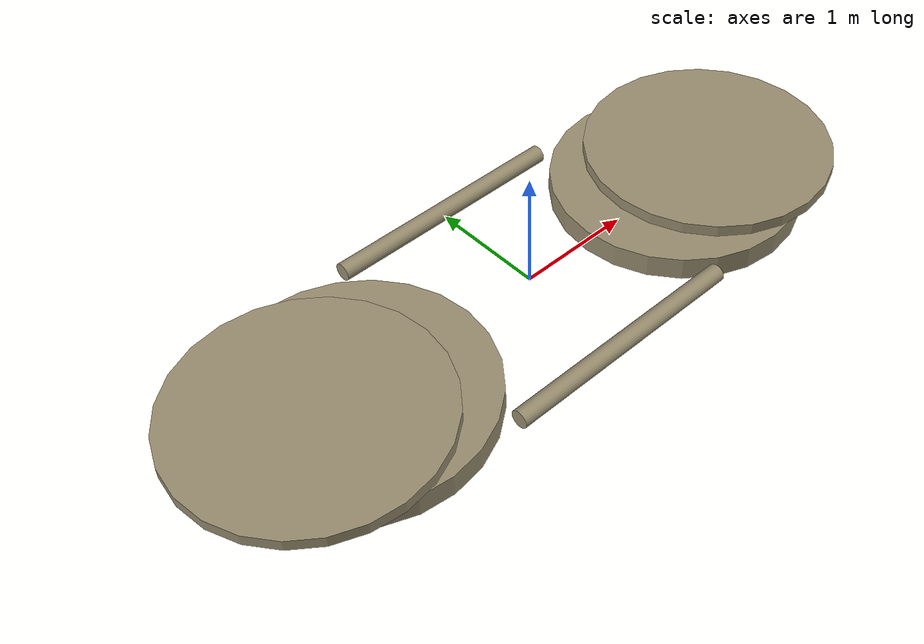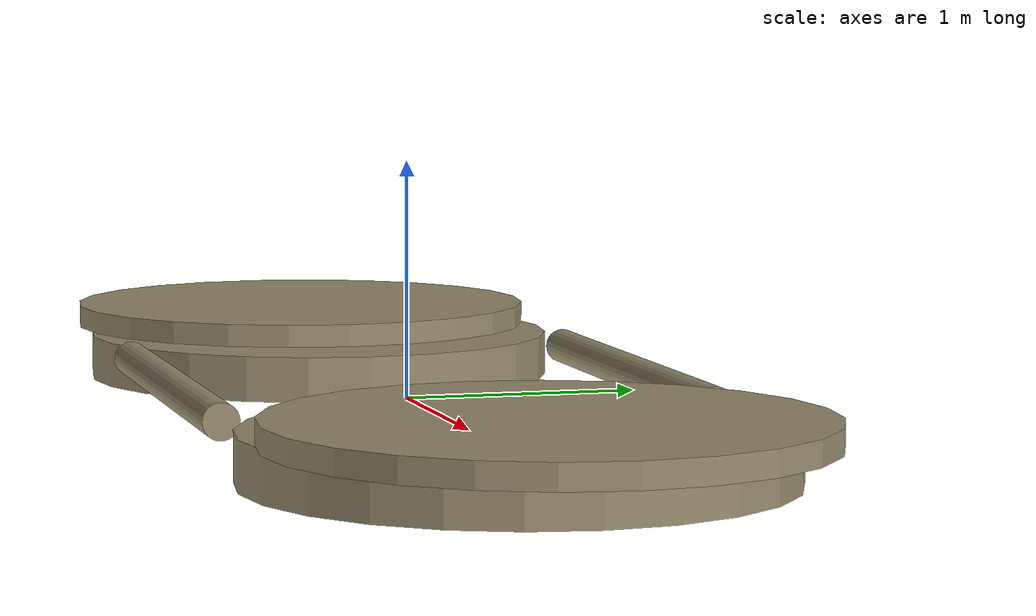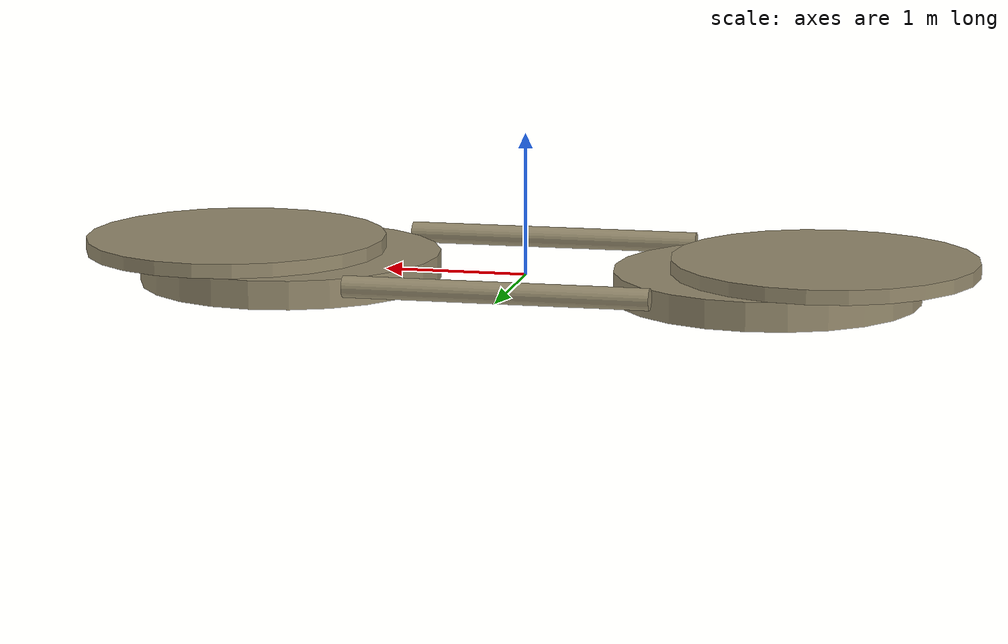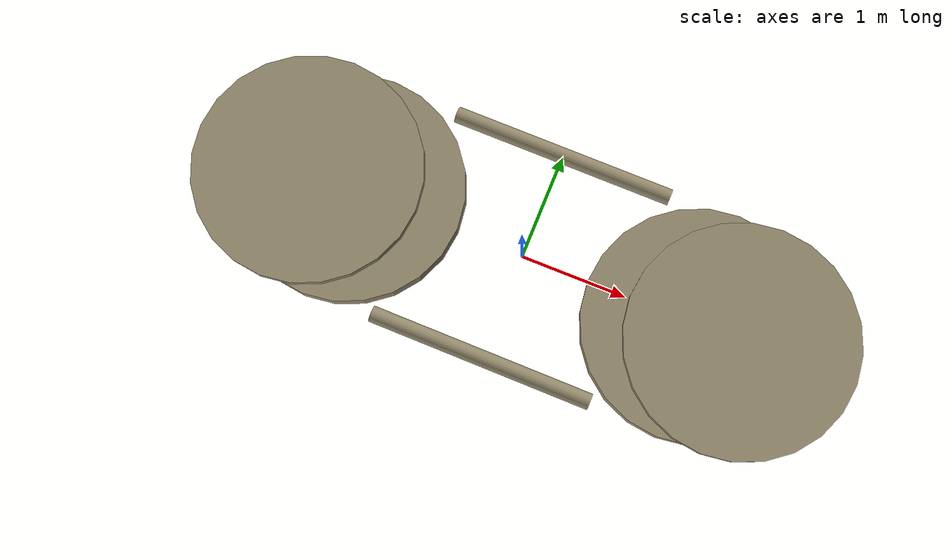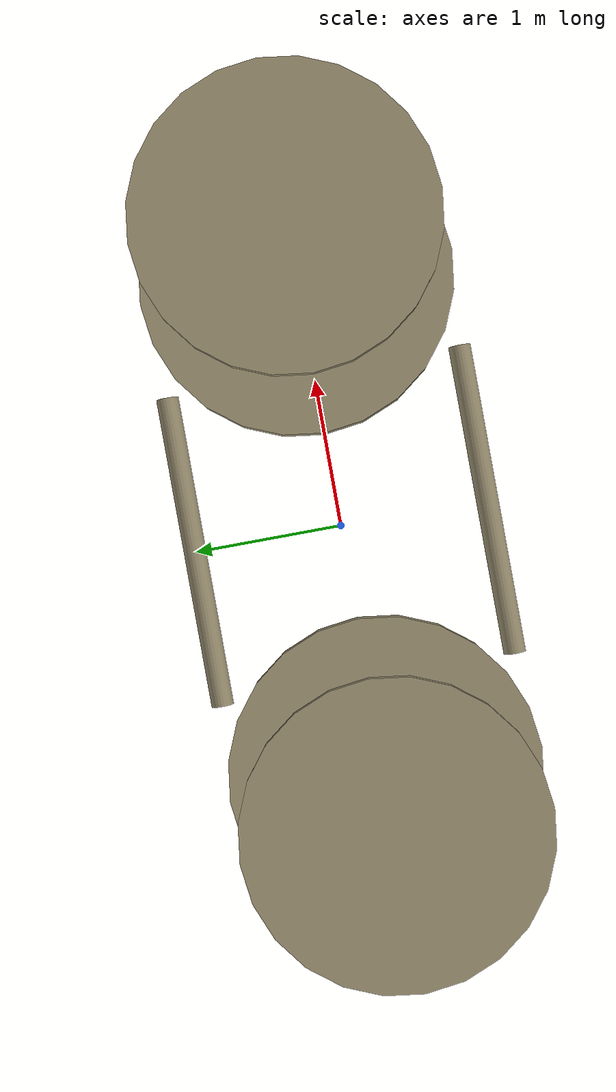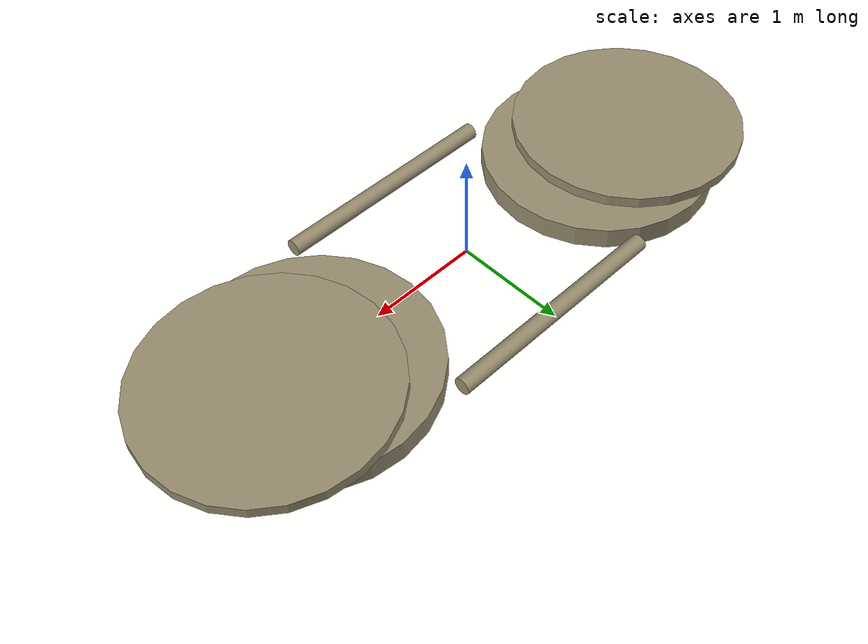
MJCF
<mujoco>
  <worldbody>
    <light diffuse=".5 .5 .5" pos="0 2 0.075" dir="0 0 -1"/>
    <body pos="1.7 0 0">
      <geom name="stairs1" size="1.065 0.1" quat="1 0 0 0" type="cylinder" rgba="0.594118 0.55098 0.433333  1" contype="3" conaffinity="3"/>
    </body>
    <body pos="-1.7 0 0">
      <geom name="stairs2" size="1.065 0.1" quat="1 0 0 0" type="cylinder" rgba="0.594118 0.55098 0.433333  1" contype="3" conaffinity="3"/>
    </body>
    <body pos="2.1 0 0.15">
      <geom name="stairs3" size="1.065 0.05" quat="1 0 0 0" type="cylinder" rgba="0.594118 0.55098 0.433333  1" contype="3" conaffinity="3"/>
    </body>
    <body pos="-2.1 0 0.15">
      <geom name="stairs4" size="1.065 0.05" quat="1 0 0 0" type="cylinder" rgba="0.594118 0.55098 0.433333  1" contype="3" conaffinity="3"/>
    </body>
    <body pos="0 -1 0.075">
      <geom name="log1" size="0.075 1.05" quat="1 0 1 0" type="cylinder" rgba="0.594118 0.55098 0.433333  1" contype="3" conaffinity="3"/>
    </body>
    <body pos="0 1 0.075">
      <geom name="log2" size="0.075 1.05" quat="1 0 1 0" type="cylinder" rgba="0.594118 0.55098 0.433333  1" contype="3" conaffinity="3"/>
    </body>
  </worldbody>
</mujoco>
